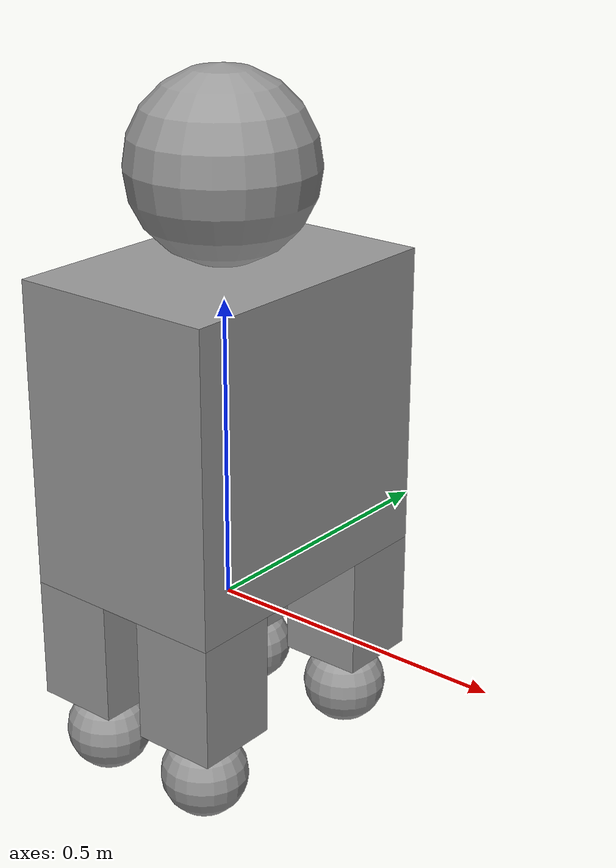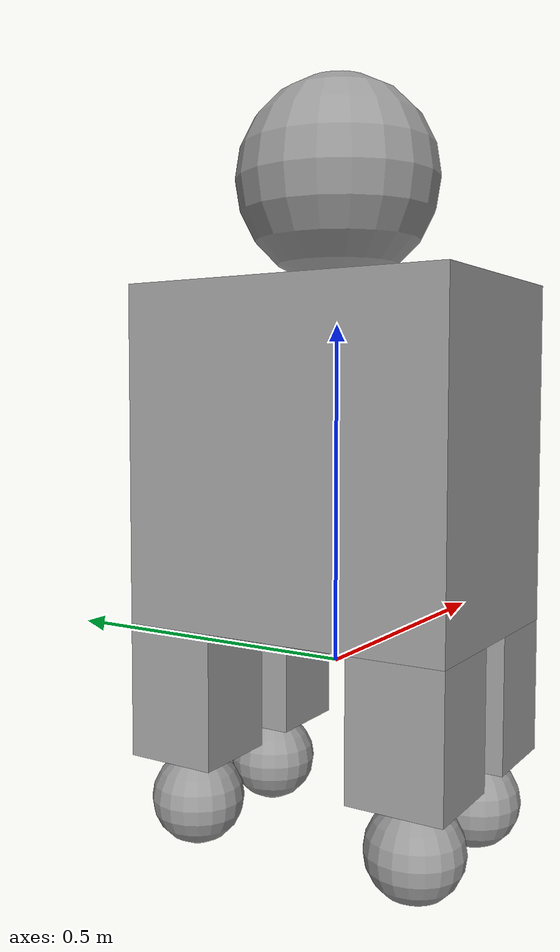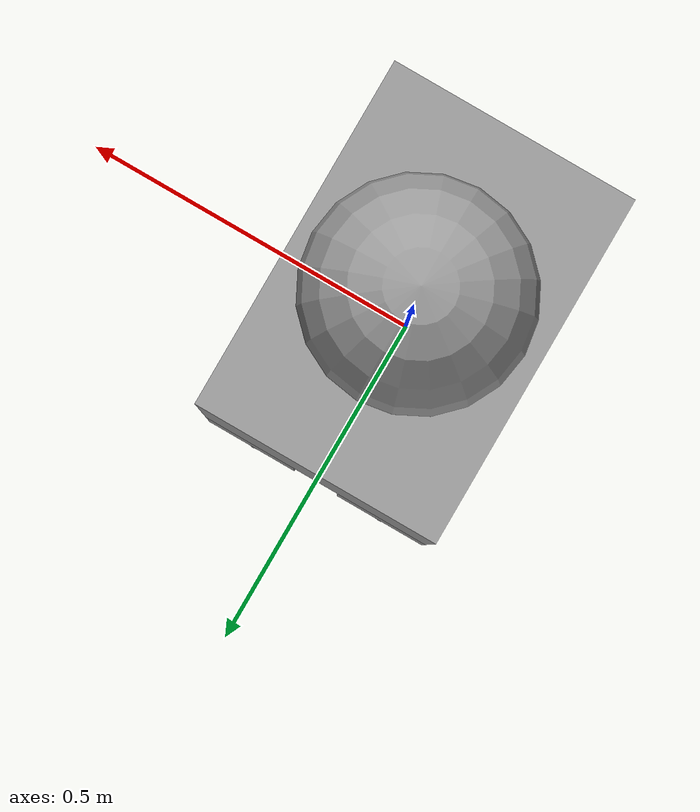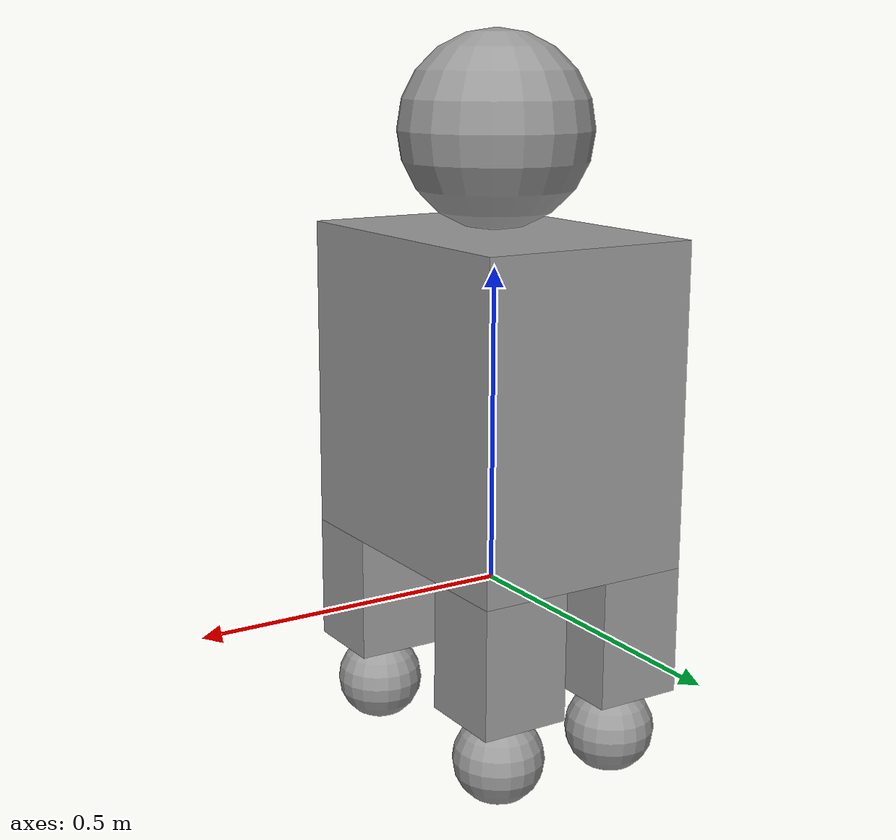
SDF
<?xml version='1.0'?>
<sdf version='1.6'>
  <model name='proj_1_box_robot'>
    <link name='link_0'>
      <pose frame=''>0 -0 0.308 0 -0 0</pose>
      <inertial>
        <mass>1</mass>
        <inertia>
          <ixx>0.166667</ixx>
          <ixy>0</ixy>
          <ixz>0</ixz>
          <iyy>0.166667</iyy>
          <iyz>0</iyz>
          <izz>0.166667</izz>
        </inertia>
        <pose frame=''>0 0 0 0 -0 0</pose>
      </inertial>
      <gravity>1</gravity>
      <self_collide>0</self_collide>
      <kinematic>0</kinematic>
      <visual name='visual'>
        <pose frame=''>0 0 0 0 -0 0</pose>
        <geometry>
          <box>
            <size>0.35 0.5 0.5</size>
          </box>
        </geometry>
        <material>
          <lighting>1</lighting>
          <script>
            <uri>file://media/materials/scripts/gazebo.material</uri>
            <name>Gazebo/Grey</name>
          </script>
          <shader type='pixel'>
            <normal_map>__default__</normal_map>
          </shader>
          <ambient>0.3 0.3 0.3 1</ambient>
          <diffuse>0.7 0.7 0.7 1</diffuse>
          <specular>0.01 0.01 0.01 1</specular>
          <emissive>0 0 0 1</emissive>
        </material>
        <transparency>0</transparency>
        <cast_shadows>1</cast_shadows>
      </visual>
      <collision name='collision'>
        <laser_retro>0</laser_retro>
        <max_contacts>10</max_contacts>
        <pose frame=''>0 0 0 0 -0 0</pose>
        <geometry>
          <box>
            <size>0.35 0.5 0.5</size>
          </box>
        </geometry>
        <surface>
          <friction>
            <ode>
              <mu>1</mu>
              <mu2>1</mu2>
              <fdir1>0 0 0</fdir1>
              <slip1>0</slip1>
              <slip2>0</slip2>
            </ode>
            <torsional>
              <coefficient>1</coefficient>
              <patch_radius>0</patch_radius>
              <surface_radius>0</surface_radius>
              <use_patch_radius>1</use_patch_radius>
              <ode>
                <slip>0</slip>
              </ode>
            </torsional>
          </friction>
          <bounce>
            <restitution_coefficient>0</restitution_coefficient>
            <threshold>1e+06</threshold>
          </bounce>
          <contact>
            <collide_without_contact>0</collide_without_contact>
            <collide_without_contact_bitmask>1</collide_without_contact_bitmask>
            <collide_bitmask>1</collide_bitmask>
            <ode>
              <soft_cfm>0</soft_cfm>
              <soft_erp>0.2</soft_erp>
              <kp>1e+13</kp>
              <kd>1</kd>
              <max_vel>0.01</max_vel>
              <min_depth>0</min_depth>
            </ode>
            <bullet>
              <split_impulse>1</split_impulse>
              <split_impulse_penetration_threshold>-0.01</split_impulse_penetration_threshold>
              <soft_cfm>0</soft_cfm>
              <soft_erp>0.2</soft_erp>
              <kp>1e+13</kp>
              <kd>1</kd>
            </bullet>
          </contact>
        </surface>
      </collision>
    </link>
    <link name='link_1_clone'>
      <pose frame=''>0.105 -0.18 -0.042 0 -0 0</pose>
      <inertial>
        <mass>1</mass>
        <inertia>
          <ixx>0.166667</ixx>
          <ixy>0</ixy>
          <ixz>0</ixz>
          <iyy>0.166667</iyy>
          <iyz>0</iyz>
          <izz>0.166667</izz>
        </inertia>
        <pose frame=''>0 0 0 0 -0 0</pose>
      </inertial>
      <self_collide>0</self_collide>
      <kinematic>0</kinematic>
      <visual name='visual'>
        <pose frame=''>0 0 0 0 -0 0</pose>
        <geometry>
          <box>
            <size>0.14 0.14 0.2</size>
          </box>
        </geometry>
        <material>
          <lighting>1</lighting>
          <script>
            <uri>file://media/materials/scripts/gazebo.material</uri>
            <name>Gazebo/Grey</name>
          </script>
          <shader type='pixel'>
            <normal_map>__default__</normal_map>
          </shader>
          <ambient>0.3 0.3 0.3 1</ambient>
          <diffuse>0.7 0.7 0.7 1</diffuse>
          <specular>0.01 0.01 0.01 1</specular>
          <emissive>0 0 0 1</emissive>
        </material>
        <transparency>0</transparency>
        <cast_shadows>1</cast_shadows>
      </visual>
      <collision name='collision'>
        <laser_retro>0</laser_retro>
        <max_contacts>10</max_contacts>
        <pose frame=''>0 0 0 0 -0 0</pose>
        <geometry>
          <box>
            <size>0.14 0.14 0.2</size>
          </box>
        </geometry>
        <surface>
          <friction>
            <ode>
              <mu>1</mu>
              <mu2>1</mu2>
              <fdir1>0 0 0</fdir1>
              <slip1>0</slip1>
              <slip2>0</slip2>
            </ode>
            <torsional>
              <coefficient>1</coefficient>
              <patch_radius>0</patch_radius>
              <surface_radius>0</surface_radius>
              <use_patch_radius>1</use_patch_radius>
              <ode>
                <slip>0</slip>
              </ode>
            </torsional>
          </friction>
          <bounce>
            <restitution_coefficient>0</restitution_coefficient>
            <threshold>1e+06</threshold>
          </bounce>
          <contact>
            <collide_without_contact>0</collide_without_contact>
            <collide_without_contact_bitmask>1</collide_without_contact_bitmask>
            <collide_bitmask>1</collide_bitmask>
            <ode>
              <soft_cfm>0</soft_cfm>
              <soft_erp>0.2</soft_erp>
              <kp>1e+13</kp>
              <kd>1</kd>
              <max_vel>0.01</max_vel>
              <min_depth>0</min_depth>
            </ode>
            <bullet>
              <split_impulse>1</split_impulse>
              <split_impulse_penetration_threshold>-0.01</split_impulse_penetration_threshold>
              <soft_cfm>0</soft_cfm>
              <soft_erp>0.2</soft_erp>
              <kp>1e+13</kp>
              <kd>1</kd>
            </bullet>
          </contact>
        </surface>
      </collision>
    </link>
    <link name='link_1_clone_clone'>
      <pose frame=''>-0.105 -0.18 -0.042 0 -0 0</pose>
      <inertial>
        <mass>1</mass>
        <inertia>
          <ixx>0.166667</ixx>
          <ixy>0</ixy>
          <ixz>0</ixz>
          <iyy>0.166667</iyy>
          <iyz>0</iyz>
          <izz>0.166667</izz>
        </inertia>
        <pose frame=''>0 0 0 0 -0 0</pose>
      </inertial>
      <self_collide>0</self_collide>
      <kinematic>0</kinematic>
      <visual name='visual'>
        <pose frame=''>0 0 0 0 -0 0</pose>
        <geometry>
          <box>
            <size>0.14 0.14 0.2</size>
          </box>
        </geometry>
        <material>
          <lighting>1</lighting>
          <script>
            <uri>file://media/materials/scripts/gazebo.material</uri>
            <name>Gazebo/Grey</name>
          </script>
          <shader type='pixel'>
            <normal_map>__default__</normal_map>
          </shader>
          <ambient>0.3 0.3 0.3 1</ambient>
          <diffuse>0.7 0.7 0.7 1</diffuse>
          <specular>0.01 0.01 0.01 1</specular>
          <emissive>0 0 0 1</emissive>
        </material>
        <transparency>0</transparency>
        <cast_shadows>1</cast_shadows>
      </visual>
      <collision name='collision'>
        <laser_retro>0</laser_retro>
        <max_contacts>10</max_contacts>
        <pose frame=''>0 0 0 0 -0 0</pose>
        <geometry>
          <box>
            <size>0.14 0.14 0.2</size>
          </box>
        </geometry>
        <surface>
          <friction>
            <ode>
              <mu>1</mu>
              <mu2>1</mu2>
              <fdir1>0 0 0</fdir1>
              <slip1>0</slip1>
              <slip2>0</slip2>
            </ode>
            <torsional>
              <coefficient>1</coefficient>
              <patch_radius>0</patch_radius>
              <surface_radius>0</surface_radius>
              <use_patch_radius>1</use_patch_radius>
              <ode>
                <slip>0</slip>
              </ode>
            </torsional>
          </friction>
          <bounce>
            <restitution_coefficient>0</restitution_coefficient>
            <threshold>1e+06</threshold>
          </bounce>
          <contact>
            <collide_without_contact>0</collide_without_contact>
            <collide_without_contact_bitmask>1</collide_without_contact_bitmask>
            <collide_bitmask>1</collide_bitmask>
            <ode>
              <soft_cfm>0</soft_cfm>
              <soft_erp>0.2</soft_erp>
              <kp>1e+13</kp>
              <kd>1</kd>
              <max_vel>0.01</max_vel>
              <min_depth>0</min_depth>
            </ode>
            <bullet>
              <split_impulse>1</split_impulse>
              <split_impulse_penetration_threshold>-0.01</split_impulse_penetration_threshold>
              <soft_cfm>0</soft_cfm>
              <soft_erp>0.2</soft_erp>
              <kp>1e+13</kp>
              <kd>1</kd>
            </bullet>
          </contact>
        </surface>
      </collision>
    </link>
    <link name='link_1_clone_clone_0'>
      <pose frame=''>-0.105 0.18 -0.042 0 -0 0</pose>
      <inertial>
        <mass>1</mass>
        <inertia>
          <ixx>0.166667</ixx>
          <ixy>0</ixy>
          <ixz>0</ixz>
          <iyy>0.166667</iyy>
          <iyz>0</iyz>
          <izz>0.166667</izz>
        </inertia>
        <pose frame=''>0 0 0 0 -0 0</pose>
      </inertial>
      <self_collide>0</self_collide>
      <kinematic>0</kinematic>
      <visual name='visual'>
        <pose frame=''>0 0 0 0 -0 0</pose>
        <geometry>
          <box>
            <size>0.14 0.14 0.2</size>
          </box>
        </geometry>
        <material>
          <lighting>1</lighting>
          <script>
            <uri>file://media/materials/scripts/gazebo.material</uri>
            <name>Gazebo/Grey</name>
          </script>
          <shader type='pixel'>
            <normal_map>__default__</normal_map>
          </shader>
          <ambient>0.3 0.3 0.3 1</ambient>
          <diffuse>0.7 0.7 0.7 1</diffuse>
          <specular>0.01 0.01 0.01 1</specular>
          <emissive>0 0 0 1</emissive>
        </material>
        <transparency>0</transparency>
        <cast_shadows>1</cast_shadows>
      </visual>
      <collision name='collision'>
        <laser_retro>0</laser_retro>
        <max_contacts>10</max_contacts>
        <pose frame=''>0 0 0 0 -0 0</pose>
        <geometry>
          <box>
            <size>0.14 0.14 0.2</size>
          </box>
        </geometry>
        <surface>
          <friction>
            <ode>
              <mu>1</mu>
              <mu2>1</mu2>
              <fdir1>0 0 0</fdir1>
              <slip1>0</slip1>
              <slip2>0</slip2>
            </ode>
            <torsional>
              <coefficient>1</coefficient>
              <patch_radius>0</patch_radius>
              <surface_radius>0</surface_radius>
              <use_patch_radius>1</use_patch_radius>
              <ode>
                <slip>0</slip>
              </ode>
            </torsional>
          </friction>
          <bounce>
            <restitution_coefficient>0</restitution_coefficient>
            <threshold>1e+06</threshold>
          </bounce>
          <contact>
            <collide_without_contact>0</collide_without_contact>
            <collide_without_contact_bitmask>1</collide_without_contact_bitmask>
            <collide_bitmask>1</collide_bitmask>
            <ode>
              <soft_cfm>0</soft_cfm>
              <soft_erp>0.2</soft_erp>
              <kp>1e+13</kp>
              <kd>1</kd>
              <max_vel>0.01</max_vel>
              <min_depth>0</min_depth>
            </ode>
            <bullet>
              <split_impulse>1</split_impulse>
              <split_impulse_penetration_threshold>-0.01</split_impulse_penetration_threshold>
              <soft_cfm>0</soft_cfm>
              <soft_erp>0.2</soft_erp>
              <kp>1e+13</kp>
              <kd>1</kd>
            </bullet>
          </contact>
        </surface>
      </collision>
    </link>
    <link name='link_1_clone_clone_0_clone'>
      <pose frame=''>0.105 0.18 -0.042 0 -0 0</pose>
      <inertial>
        <mass>1</mass>
        <inertia>
          <ixx>0.166667</ixx>
          <ixy>0</ixy>
          <ixz>0</ixz>
          <iyy>0.166667</iyy>
          <iyz>0</iyz>
          <izz>0.166667</izz>
        </inertia>
        <pose frame=''>0 0 0 0 -0 0</pose>
      </inertial>
      <self_collide>0</self_collide>
      <kinematic>0</kinematic>
      <visual name='visual'>
        <pose frame=''>0 0 0 0 -0 0</pose>
        <geometry>
          <box>
            <size>0.14 0.14 0.2</size>
          </box>
        </geometry>
        <material>
          <lighting>1</lighting>
          <script>
            <uri>file://media/materials/scripts/gazebo.material</uri>
            <name>Gazebo/Grey</name>
          </script>
          <shader type='pixel'>
            <normal_map>__default__</normal_map>
          </shader>
          <ambient>0.3 0.3 0.3 1</ambient>
          <diffuse>0.7 0.7 0.7 1</diffuse>
          <specular>0.01 0.01 0.01 1</specular>
          <emissive>0 0 0 1</emissive>
        </material>
        <transparency>0</transparency>
        <cast_shadows>1</cast_shadows>
      </visual>
      <collision name='collision'>
        <laser_retro>0</laser_retro>
        <max_contacts>10</max_contacts>
        <pose frame=''>0 0 0 0 -0 0</pose>
        <geometry>
          <box>
            <size>0.14 0.14 0.2</size>
          </box>
        </geometry>
        <surface>
          <friction>
            <ode>
              <mu>1</mu>
              <mu2>1</mu2>
              <fdir1>0 0 0</fdir1>
              <slip1>0</slip1>
              <slip2>0</slip2>
            </ode>
            <torsional>
              <coefficient>1</coefficient>
              <patch_radius>0</patch_radius>
              <surface_radius>0</surface_radius>
              <use_patch_radius>1</use_patch_radius>
              <ode>
                <slip>0</slip>
              </ode>
            </torsional>
          </friction>
          <bounce>
            <restitution_coefficient>0</restitution_coefficient>
            <threshold>1e+06</threshold>
          </bounce>
          <contact>
            <collide_without_contact>0</collide_without_contact>
            <collide_without_contact_bitmask>1</collide_without_contact_bitmask>
            <collide_bitmask>1</collide_bitmask>
            <ode>
              <soft_cfm>0</soft_cfm>
              <soft_erp>0.2</soft_erp>
              <kp>1e+13</kp>
              <kd>1</kd>
              <max_vel>0.01</max_vel>
              <min_depth>0</min_depth>
            </ode>
            <bullet>
              <split_impulse>1</split_impulse>
              <split_impulse_penetration_threshold>-0.01</split_impulse_penetration_threshold>
              <soft_cfm>0</soft_cfm>
              <soft_erp>0.2</soft_erp>
              <kp>1e+13</kp>
              <kd>1</kd>
            </bullet>
          </contact>
        </surface>
      </collision>
    </link>
    <link name='link_2_clone'>
      <pose frame=''>0.105 0.18 -0.212 0 -0 0</pose>
      <inertial>
        <mass>1</mass>
        <inertia>
          <ixx>0.1</ixx>
          <ixy>0</ixy>
          <ixz>0</ixz>
          <iyy>0.1</iyy>
          <iyz>0</iyz>
          <izz>0.1</izz>
        </inertia>
        <pose frame=''>0 0 0 0 -0 0</pose>
      </inertial>
      <self_collide>0</self_collide>
      <kinematic>0</kinematic>
      <visual name='visual'>
        <pose frame=''>0 0 0 0 -0 0</pose>
        <geometry>
          <sphere>
            <radius>0.07</radius>
          </sphere>
        </geometry>
        <material>
          <lighting>1</lighting>
          <script>
            <uri>file://media/materials/scripts/gazebo.material</uri>
            <name>Gazebo/Grey</name>
          </script>
          <shader type='pixel'>
            <normal_map>__default__</normal_map>
          </shader>
          <ambient>0.3 0.3 0.3 1</ambient>
          <diffuse>0.7 0.7 0.7 1</diffuse>
          <specular>0.01 0.01 0.01 1</specular>
          <emissive>0 0 0 1</emissive>
        </material>
        <transparency>0</transparency>
        <cast_shadows>1</cast_shadows>
      </visual>
      <collision name='collision'>
        <laser_retro>0</laser_retro>
        <max_contacts>10</max_contacts>
        <pose frame=''>0 0 0 0 -0 0</pose>
        <geometry>
          <sphere>
            <radius>0.07</radius>
          </sphere>
        </geometry>
        <surface>
          <friction>
            <ode>
              <mu>1</mu>
              <mu2>1</mu2>
              <fdir1>0 0 0</fdir1>
              <slip1>0</slip1>
              <slip2>0</slip2>
            </ode>
            <torsional>
              <coefficient>1</coefficient>
              <patch_radius>0</patch_radius>
              <surface_radius>0</surface_radius>
              <use_patch_radius>1</use_patch_radius>
              <ode>
                <slip>0</slip>
              </ode>
            </torsional>
          </friction>
          <bounce>
            <restitution_coefficient>0</restitution_coefficient>
            <threshold>1e+06</threshold>
          </bounce>
          <contact>
            <collide_without_contact>0</collide_without_contact>
            <collide_without_contact_bitmask>1</collide_without_contact_bitmask>
            <collide_bitmask>1</collide_bitmask>
            <ode>
              <soft_cfm>0</soft_cfm>
              <soft_erp>0.2</soft_erp>
              <kp>1e+13</kp>
              <kd>1</kd>
              <max_vel>0.01</max_vel>
              <min_depth>0</min_depth>
            </ode>
            <bullet>
              <split_impulse>1</split_impulse>
              <split_impulse_penetration_threshold>-0.01</split_impulse_penetration_threshold>
              <soft_cfm>0</soft_cfm>
              <soft_erp>0.2</soft_erp>
              <kp>1e+13</kp>
              <kd>1</kd>
            </bullet>
          </contact>
        </surface>
      </collision>
    </link>
    <link name='link_2_clone_clone'>
      <pose frame=''>-0.105 -0.18 -0.212 0 -0 0</pose>
      <inertial>
        <mass>1</mass>
        <inertia>
          <ixx>0.1</ixx>
          <ixy>0</ixy>
          <ixz>0</ixz>
          <iyy>0.1</iyy>
          <iyz>0</iyz>
          <izz>0.1</izz>
        </inertia>
        <pose frame=''>0 0 0 0 -0 0</pose>
      </inertial>
      <self_collide>0</self_collide>
      <kinematic>0</kinematic>
      <visual name='visual'>
        <pose frame=''>0 0 0 0 -0 0</pose>
        <geometry>
          <sphere>
            <radius>0.07</radius>
          </sphere>
        </geometry>
        <material>
          <lighting>1</lighting>
          <script>
            <uri>file://media/materials/scripts/gazebo.material</uri>
            <name>Gazebo/Grey</name>
          </script>
          <shader type='pixel'>
            <normal_map>__default__</normal_map>
          </shader>
          <ambient>0.3 0.3 0.3 1</ambient>
          <diffuse>0.7 0.7 0.7 1</diffuse>
          <specular>0.01 0.01 0.01 1</specular>
          <emissive>0 0 0 1</emissive>
        </material>
        <transparency>0</transparency>
        <cast_shadows>1</cast_shadows>
      </visual>
      <collision name='collision'>
        <laser_retro>0</laser_retro>
        <max_contacts>10</max_contacts>
        <pose frame=''>0 0 0 0 -0 0</pose>
        <geometry>
          <sphere>
            <radius>0.07</radius>
          </sphere>
        </geometry>
        <surface>
          <friction>
            <ode>
              <mu>1</mu>
              <mu2>1</mu2>
              <fdir1>0 0 0</fdir1>
              <slip1>0</slip1>
              <slip2>0</slip2>
            </ode>
            <torsional>
              <coefficient>1</coefficient>
              <patch_radius>0</patch_radius>
              <surface_radius>0</surface_radius>
              <use_patch_radius>1</use_patch_radius>
              <ode>
                <slip>0</slip>
              </ode>
            </torsional>
          </friction>
          <bounce>
            <restitution_coefficient>0</restitution_coefficient>
            <threshold>1e+06</threshold>
          </bounce>
          <contact>
            <collide_without_contact>0</collide_without_contact>
            <collide_without_contact_bitmask>1</collide_without_contact_bitmask>
            <collide_bitmask>1</collide_bitmask>
            <ode>
              <soft_cfm>0</soft_cfm>
              <soft_erp>0.2</soft_erp>
              <kp>1e+13</kp>
              <kd>1</kd>
              <max_vel>0.01</max_vel>
              <min_depth>0</min_depth>
            </ode>
            <bullet>
              <split_impulse>1</split_impulse>
              <split_impulse_penetration_threshold>-0.01</split_impulse_penetration_threshold>
              <soft_cfm>0</soft_cfm>
              <soft_erp>0.2</soft_erp>
              <kp>1e+13</kp>
              <kd>1</kd>
            </bullet>
          </contact>
        </surface>
      </collision>
    </link>
    <link name='link_2_clone_clone_0'>
      <pose frame=''>-0.105 0.18 -0.212 0 -0 0</pose>
      <inertial>
        <mass>1</mass>
        <inertia>
          <ixx>0.1</ixx>
          <ixy>0</ixy>
          <ixz>0</ixz>
          <iyy>0.1</iyy>
          <iyz>0</iyz>
          <izz>0.1</izz>
        </inertia>
        <pose frame=''>0 0 0 0 -0 0</pose>
      </inertial>
      <self_collide>0</self_collide>
      <kinematic>0</kinematic>
      <visual name='visual'>
        <pose frame=''>0 0 0 0 -0 0</pose>
        <geometry>
          <sphere>
            <radius>0.07</radius>
          </sphere>
        </geometry>
        <material>
          <lighting>1</lighting>
          <script>
            <uri>file://media/materials/scripts/gazebo.material</uri>
            <name>Gazebo/Grey</name>
          </script>
          <shader type='pixel'>
            <normal_map>__default__</normal_map>
          </shader>
          <ambient>0.3 0.3 0.3 1</ambient>
          <diffuse>0.7 0.7 0.7 1</diffuse>
          <specular>0.01 0.01 0.01 1</specular>
          <emissive>0 0 0 1</emissive>
        </material>
        <transparency>0</transparency>
        <cast_shadows>1</cast_shadows>
      </visual>
      <collision name='collision'>
        <laser_retro>0</laser_retro>
        <max_contacts>10</max_contacts>
        <pose frame=''>0 0 0 0 -0 0</pose>
        <geometry>
          <sphere>
            <radius>0.07</radius>
          </sphere>
        </geometry>
        <surface>
          <friction>
            <ode>
              <mu>1</mu>
              <mu2>1</mu2>
              <fdir1>0 0 0</fdir1>
              <slip1>0</slip1>
              <slip2>0</slip2>
            </ode>
            <torsional>
              <coefficient>1</coefficient>
              <patch_radius>0</patch_radius>
              <surface_radius>0</surface_radius>
              <use_patch_radius>1</use_patch_radius>
              <ode>
                <slip>0</slip>
              </ode>
            </torsional>
          </friction>
          <bounce>
            <restitution_coefficient>0</restitution_coefficient>
            <threshold>1e+06</threshold>
          </bounce>
          <contact>
            <collide_without_contact>0</collide_without_contact>
            <collide_without_contact_bitmask>1</collide_without_contact_bitmask>
            <collide_bitmask>1</collide_bitmask>
            <ode>
              <soft_cfm>0</soft_cfm>
              <soft_erp>0.2</soft_erp>
              <kp>1e+13</kp>
              <kd>1</kd>
              <max_vel>0.01</max_vel>
              <min_depth>0</min_depth>
            </ode>
            <bullet>
              <split_impulse>1</split_impulse>
              <split_impulse_penetration_threshold>-0.01</split_impulse_penetration_threshold>
              <soft_cfm>0</soft_cfm>
              <soft_erp>0.2</soft_erp>
              <kp>1e+13</kp>
              <kd>1</kd>
            </bullet>
          </contact>
        </surface>
      </collision>
    </link>
    <link name='link_2_clone_clone_1'>
      <pose frame=''>0.105 -0.18 -0.212 0 -0 0</pose>
      <inertial>
        <mass>1</mass>
        <inertia>
          <ixx>0.1</ixx>
          <ixy>0</ixy>
          <ixz>0</ixz>
          <iyy>0.1</iyy>
          <iyz>0</iyz>
          <izz>0.1</izz>
        </inertia>
        <pose frame=''>0 0 0 0 -0 0</pose>
      </inertial>
      <self_collide>0</self_collide>
      <kinematic>0</kinematic>
      <visual name='visual'>
        <pose frame=''>0 0 0 0 -0 0</pose>
        <geometry>
          <sphere>
            <radius>0.07</radius>
          </sphere>
        </geometry>
        <material>
          <lighting>1</lighting>
          <script>
            <uri>file://media/materials/scripts/gazebo.material</uri>
            <name>Gazebo/Grey</name>
          </script>
          <shader type='pixel'>
            <normal_map>__default__</normal_map>
          </shader>
          <ambient>0.3 0.3 0.3 1</ambient>
          <diffuse>0.7 0.7 0.7 1</diffuse>
          <specular>0.01 0.01 0.01 1</specular>
          <emissive>0 0 0 1</emissive>
        </material>
        <transparency>0</transparency>
        <cast_shadows>1</cast_shadows>
      </visual>
      <collision name='collision'>
        <laser_retro>0</laser_retro>
        <max_contacts>10</max_contacts>
        <pose frame=''>0 0 0 0 -0 0</pose>
        <geometry>
          <sphere>
            <radius>0.07</radius>
          </sphere>
        </geometry>
        <surface>
          <friction>
            <ode>
              <mu>1</mu>
              <mu2>1</mu2>
              <fdir1>0 0 0</fdir1>
              <slip1>0</slip1>
              <slip2>0</slip2>
            </ode>
            <torsional>
              <coefficient>1</coefficient>
              <patch_radius>0</patch_radius>
              <surface_radius>0</surface_radius>
              <use_patch_radius>1</use_patch_radius>
              <ode>
                <slip>0</slip>
              </ode>
            </torsional>
          </friction>
          <bounce>
            <restitution_coefficient>0</restitution_coefficient>
            <threshold>1e+06</threshold>
          </bounce>
          <contact>
            <collide_without_contact>0</collide_without_contact>
            <collide_without_contact_bitmask>1</collide_without_contact_bitmask>
            <collide_bitmask>1</collide_bitmask>
            <ode>
              <soft_cfm>0</soft_cfm>
              <soft_erp>0.2</soft_erp>
              <kp>1e+13</kp>
              <kd>1</kd>
              <max_vel>0.01</max_vel>
              <min_depth>0</min_depth>
            </ode>
            <bullet>
              <split_impulse>1</split_impulse>
              <split_impulse_penetration_threshold>-0.01</split_impulse_penetration_threshold>
              <soft_cfm>0</soft_cfm>
              <soft_erp>0.2</soft_erp>
              <kp>1e+13</kp>
              <kd>1</kd>
            </bullet>
          </contact>
        </surface>
      </collision>
    </link>
    <link name='link_3'>
      <pose frame=''>0 -0 0.708 0 -0 0</pose>
      <inertial>
        <mass>1</mass>
        <inertia>
          <ixx>0.1</ixx>
          <ixy>0</ixy>
          <ixz>0</ixz>
          <iyy>0.1</iyy>
          <iyz>0</iyz>
          <izz>0.1</izz>
        </inertia>
        <pose frame=''>0 0 0 0 -0 0</pose>
      </inertial>
      <gravity>1</gravity>
      <self_collide>0</self_collide>
      <kinematic>0</kinematic>
      <visual name='visual'>
        <pose frame=''>0 0 0 0 -0 0</pose>
        <geometry>
          <sphere>
            <radius>0.15</radius>
          </sphere>
        </geometry>
        <material>
          <lighting>1</lighting>
          <script>
            <uri>file://media/materials/scripts/gazebo.material</uri>
            <name>Gazebo/Grey</name>
          </script>
          <shader type='pixel'>
            <normal_map>__default__</normal_map>
          </shader>
          <ambient>0.3 0.3 0.3 1</ambient>
          <diffuse>0.7 0.7 0.7 1</diffuse>
          <specular>0.01 0.01 0.01 1</specular>
          <emissive>0 0 0 1</emissive>
        </material>
        <transparency>0</transparency>
        <cast_shadows>1</cast_shadows>
      </visual>
      <collision name='collision'>
        <laser_retro>0</laser_retro>
        <max_contacts>10</max_contacts>
        <pose frame=''>0 0 0 0 -0 0</pose>
        <geometry>
          <sphere>
            <radius>0.15</radius>
          </sphere>
        </geometry>
        <surface>
          <friction>
            <ode>
              <mu>1</mu>
              <mu2>1</mu2>
              <fdir1>0 0 0</fdir1>
              <slip1>0</slip1>
              <slip2>0</slip2>
            </ode>
            <torsional>
              <coefficient>1</coefficient>
              <patch_radius>0</patch_radius>
              <surface_radius>0</surface_radius>
              <use_patch_radius>1</use_patch_radius>
              <ode>
                <slip>0</slip>
              </ode>
            </torsional>
          </friction>
          <bounce>
            <restitution_coefficient>0</restitution_coefficient>
            <threshold>1e+06</threshold>
          </bounce>
          <contact>
            <collide_without_contact>0</collide_without_contact>
            <collide_without_contact_bitmask>1</collide_without_contact_bitmask>
            <collide_bitmask>1</collide_bitmask>
            <ode>
              <soft_cfm>0</soft_cfm>
              <soft_erp>0.2</soft_erp>
              <kp>1e+13</kp>
              <kd>1</kd>
              <max_vel>0.01</max_vel>
              <min_depth>0</min_depth>
            </ode>
            <bullet>
              <split_impulse>1</split_impulse>
              <split_impulse_penetration_threshold>-0.01</split_impulse_penetration_threshold>
              <soft_cfm>0</soft_cfm>
              <soft_erp>0.2</soft_erp>
              <kp>1e+13</kp>
              <kd>1</kd>
            </bullet>
          </contact>
        </surface>
      </collision>
    </link>
    <joint name='link_0_JOINT_0' type='fixed'>
      <parent>link_0</parent>
      <child>link_1_clone</child>
      <pose frame=''>0 0 0 0 -0 0</pose>
      <physics>
        <ode>
          <limit>
            <cfm>0</cfm>
            <erp>0.2</erp>
          </limit>
          <suspension>
            <cfm>0</cfm>
            <erp>0.2</erp>
          </suspension>
        </ode>
      </physics>
    </joint>
    <joint name='link_0_JOINT_2' type='revolute'>
      <parent>link_0</parent>
      <child>link_1_clone_clone_0_clone</child>
      <pose frame=''>0 0 0 0 -0 0</pose>
      <axis>
        <xyz>1 0 0</xyz>
        <use_parent_model_frame>0</use_parent_model_frame>
        <limit>
          <lower>-1.79769e+308</lower>
          <upper>1.79769e+308</upper>
          <effort>-1</effort>
          <velocity>-1</velocity>
        </limit>
        <dynamics>
          <spring_reference>0</spring_reference>
          <spring_stiffness>0</spring_stiffness>
          <damping>0</damping>
        </dynamics>
      </axis>
      <physics>
        <ode>
          <limit>
            <cfm>0</cfm>
            <erp>0.2</erp>
          </limit>
          <suspension>
            <cfm>0</cfm>
            <erp>0.2</erp>
          </suspension>
        </ode>
      </physics>
    </joint>
    <joint name='link_0_JOINT_3' type='revolute'>
      <parent>link_0</parent>
      <child>link_1_clone_clone_0</child>
      <pose frame=''>0 0 0 0 -0 0</pose>
      <axis>
        <xyz>1 0 0</xyz>
        <use_parent_model_frame>0</use_parent_model_frame>
        <limit>
          <lower>-1.79769e+308</lower>
          <upper>1.79769e+308</upper>
          <effort>-1</effort>
          <velocity>-1</velocity>
        </limit>
        <dynamics>
          <spring_reference>0</spring_reference>
          <spring_stiffness>0</spring_stiffness>
          <damping>0</damping>
        </dynamics>
      </axis>
      <physics>
        <ode>
          <limit>
            <cfm>0</cfm>
            <erp>0.2</erp>
          </limit>
          <suspension>
            <cfm>0</cfm>
            <erp>0.2</erp>
          </suspension>
        </ode>
      </physics>
    </joint>
    <joint name='link_0_JOINT_4' type='revolute'>
      <parent>link_0</parent>
      <child>link_1_clone_clone</child>
      <pose frame=''>0 0 0 0 -0 0</pose>
      <axis>
        <xyz>1 0 0</xyz>
        <use_parent_model_frame>0</use_parent_model_frame>
        <limit>
          <lower>-1.79769e+308</lower>
          <upper>1.79769e+308</upper>
          <effort>-1</effort>
          <velocity>-1</velocity>
        </limit>
        <dynamics>
          <spring_reference>0</spring_reference>
          <spring_stiffness>0</spring_stiffness>
          <damping>0</damping>
        </dynamics>
      </axis>
      <physics>
        <ode>
          <limit>
            <cfm>0</cfm>
            <erp>0.2</erp>
          </limit>
          <suspension>
            <cfm>0</cfm>
            <erp>0.2</erp>
          </suspension>
        </ode>
      </physics>
    </joint>
    <joint name='link_0_JOINT_9' type='fixed'>
      <parent>link_0</parent>
      <child>link_3</child>
      <pose frame=''>0 0 0 0 -0 0</pose>
      <physics>
        <ode>
          <limit>
            <cfm>0</cfm>
            <erp>0.2</erp>
          </limit>
          <suspension>
            <cfm>0</cfm>
            <erp>0.2</erp>
          </suspension>
        </ode>
      </physics>
    </joint>
    <joint name='link_1_clone_JOINT_5' type='revolute'>
      <parent>link_1_clone</parent>
      <child>link_2_clone_clone_1</child>
      <pose frame=''>0 0 0 0 -0 0</pose>
      <axis>
        <xyz>0 0 1</xyz>
        <use_parent_model_frame>0</use_parent_model_frame>
        <limit>
          <lower>-1.79769e+308</lower>
          <upper>1.79769e+308</upper>
          <effort>-1</effort>
          <velocity>-1</velocity>
        </limit>
        <dynamics>
          <spring_reference>0</spring_reference>
          <spring_stiffness>0</spring_stiffness>
          <damping>0</damping>
        </dynamics>
      </axis>
      <physics>
        <ode>
          <limit>
            <cfm>0</cfm>
            <erp>0.2</erp>
          </limit>
          <suspension>
            <cfm>0</cfm>
            <erp>0.2</erp>
          </suspension>
        </ode>
      </physics>
    </joint>
    <joint name='link_1_clone_clone_0_JOINT_8' type='revolute'>
      <parent>link_1_clone_clone_0</parent>
      <child>link_2_clone_clone_0</child>
      <pose frame=''>0 0 0 0 -0 0</pose>
      <axis>
        <xyz>0 0 1</xyz>
        <use_parent_model_frame>0</use_parent_model_frame>
        <limit>
          <lower>-1.79769e+308</lower>
          <upper>1.79769e+308</upper>
          <effort>-1</effort>
          <velocity>-1</velocity>
        </limit>
        <dynamics>
          <spring_reference>0</spring_reference>
          <spring_stiffness>0</spring_stiffness>
          <damping>0</damping>
        </dynamics>
      </axis>
      <physics>
        <ode>
          <limit>
            <cfm>0</cfm>
            <erp>0.2</erp>
          </limit>
          <suspension>
            <cfm>0</cfm>
            <erp>0.2</erp>
          </suspension>
        </ode>
      </physics>
    </joint>
    <joint name='link_1_clone_clone_0_clone_JOINT_7' type='revolute'>
      <parent>link_1_clone_clone_0_clone</parent>
      <child>link_2_clone</child>
      <pose frame=''>0 0 0 0 -0 0</pose>
      <axis>
        <xyz>0 0 1</xyz>
        <use_parent_model_frame>0</use_parent_model_frame>
        <limit>
          <lower>-1.79769e+308</lower>
          <upper>1.79769e+308</upper>
          <effort>-1</effort>
          <velocity>-1</velocity>
        </limit>
        <dynamics>
          <spring_reference>0</spring_reference>
          <spring_stiffness>0</spring_stiffness>
          <damping>0</damping>
        </dynamics>
      </axis>
      <physics>
        <ode>
          <limit>
            <cfm>0</cfm>
            <erp>0.2</erp>
          </limit>
          <suspension>
            <cfm>0</cfm>
            <erp>0.2</erp>
          </suspension>
        </ode>
      </physics>
    </joint>
    <joint name='link_1_clone_clone_JOINT_6' type='revolute'>
      <parent>link_1_clone_clone</parent>
      <child>link_2_clone_clone</child>
      <pose frame=''>0 0 0 0 -0 0</pose>
      <axis>
        <xyz>0 0 1</xyz>
        <use_parent_model_frame>0</use_parent_model_frame>
        <limit>
          <lower>-1.79769e+308</lower>
          <upper>1.79769e+308</upper>
          <effort>-1</effort>
          <velocity>-1</velocity>
        </limit>
        <dynamics>
          <spring_reference>0</spring_reference>
          <spring_stiffness>0</spring_stiffness>
          <damping>0</damping>
        </dynamics>
      </axis>
      <physics>
        <ode>
          <limit>
            <cfm>0</cfm>
            <erp>0.2</erp>
          </limit>
          <suspension>
            <cfm>0</cfm>
            <erp>0.2</erp>
          </suspension>
        </ode>
      </physics>
    </joint>
    <static>0</static>
    <allow_auto_disable>1</allow_auto_disable>
  </model>
</sdf>
